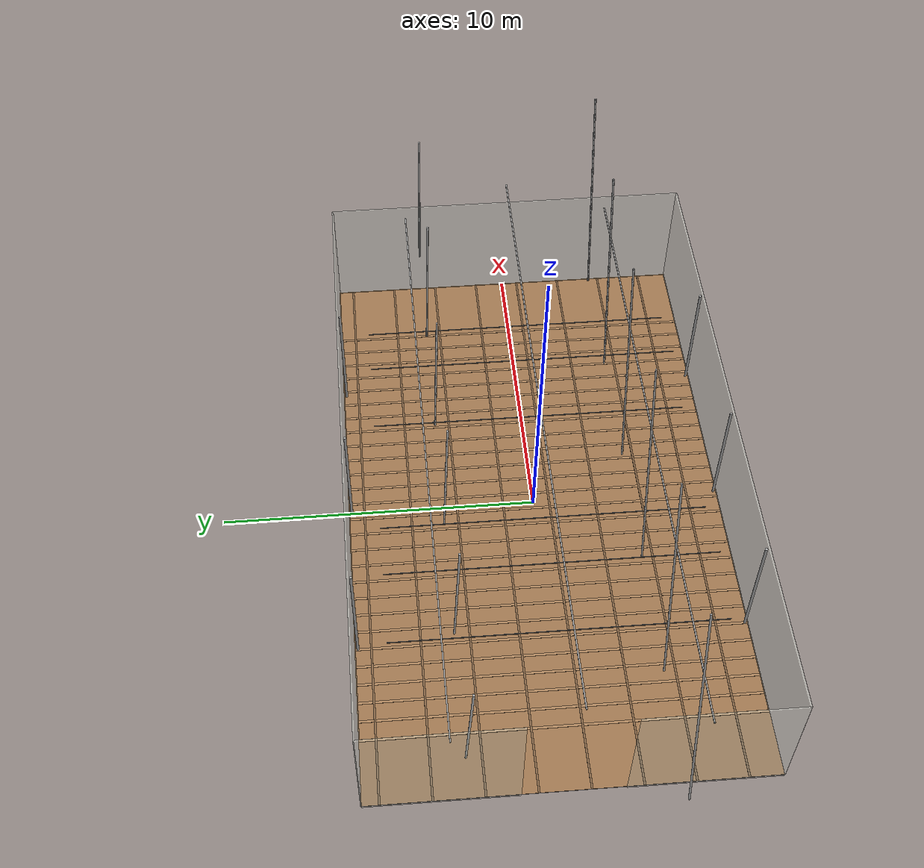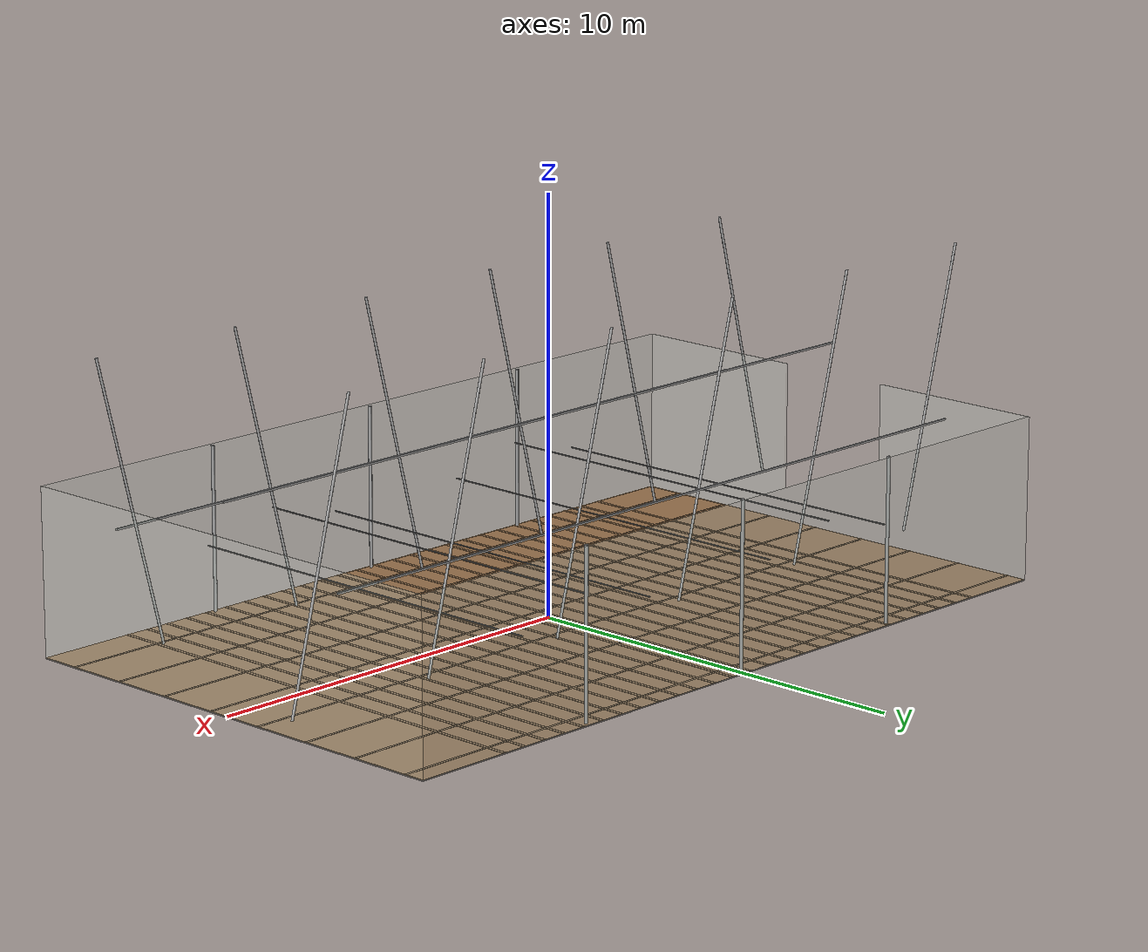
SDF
<?xml version="1.0" ?>
<!--
  黄瓜大棚模型 (Cucumber Greenhouse)
  尺寸: 长20m x 宽12m x 高5m (拱形顶)
  ★ 第十三次缩小: 40×16→20×12, 方便测试
  包含: 棚架结构、横梁、模拟藤蔓线
  所有部件都有碰撞体积用于避障测试
-->
<sdf version="1.6">
  <model name="greenhouse">
    <static>true</static>

    <!-- 地基/地面 (泥土色+纹理条纹, 增强光流效果) -->
    <link name="floor">
      <pose>0 0 0.01 0 0 0</pose>
      <collision name="floor_col"><geometry><box><size>20 12 0.02</size></box></geometry></collision>
      <visual name="floor_vis"><geometry><box><size>20 12 0.02</size></box></geometry>
        <material>
          <ambient>0.5 0.4 0.3 1</ambient>
          <diffuse>0.6 0.45 0.3 1</diffuse>
        </material>
      </visual>
    </link>

    <!-- ★ 第十五次新增: 泥土地面纹路 (给光流传感器提供特征) -->
    <!-- 横向泥土垄 (宽8cm, 间隔0.6m, 模拟种植行泥土沟壑) -->
    <link name="ds1"><pose>-8.0 0 0.022 0 0 0</pose><visual name="v"><geometry><box><size>0.08 12 0.006</size></box></geometry><material><ambient>0.55 0.42 0.28 1</ambient><diffuse>0.65 0.5 0.35 1</diffuse></material></visual></link>
    <link name="ds2"><pose>-7.4 0 0.022 0 0 0</pose><visual name="v"><geometry><box><size>0.08 12 0.006</size></box></geometry><material><ambient>0.55 0.42 0.28 1</ambient><diffuse>0.65 0.5 0.35 1</diffuse></material></visual></link>
    <link name="ds3"><pose>-6.8 0 0.022 0 0 0</pose><visual name="v"><geometry><box><size>0.08 12 0.006</size></box></geometry><material><ambient>0.55 0.42 0.28 1</ambient><diffuse>0.65 0.5 0.35 1</diffuse></material></visual></link>
    <link name="ds4"><pose>-6.2 0 0.022 0 0 0</pose><visual name="v"><geometry><box><size>0.08 12 0.006</size></box></geometry><material><ambient>0.55 0.42 0.28 1</ambient><diffuse>0.65 0.5 0.35 1</diffuse></material></visual></link>
    <link name="ds5"><pose>-5.6 0 0.022 0 0 0</pose><visual name="v"><geometry><box><size>0.08 12 0.006</size></box></geometry><material><ambient>0.55 0.42 0.28 1</ambient><diffuse>0.65 0.5 0.35 1</diffuse></material></visual></link>
    <link name="ds6"><pose>-5.0 0 0.022 0 0 0</pose><visual name="v"><geometry><box><size>0.08 12 0.006</size></box></geometry><material><ambient>0.55 0.42 0.28 1</ambient><diffuse>0.65 0.5 0.35 1</diffuse></material></visual></link>
    <link name="ds7"><pose>-4.4 0 0.022 0 0 0</pose><visual name="v"><geometry><box><size>0.08 12 0.006</size></box></geometry><material><ambient>0.55 0.42 0.28 1</ambient><diffuse>0.65 0.5 0.35 1</diffuse></material></visual></link>
    <link name="ds8"><pose>-3.8 0 0.022 0 0 0</pose><visual name="v"><geometry><box><size>0.08 12 0.006</size></box></geometry><material><ambient>0.55 0.42 0.28 1</ambient><diffuse>0.65 0.5 0.35 1</diffuse></material></visual></link>
    <link name="ds9"><pose>-3.2 0 0.022 0 0 0</pose><visual name="v"><geometry><box><size>0.08 12 0.006</size></box></geometry><material><ambient>0.55 0.42 0.28 1</ambient><diffuse>0.65 0.5 0.35 1</diffuse></material></visual></link>
    <link name="ds10"><pose>-2.6 0 0.022 0 0 0</pose><visual name="v"><geometry><box><size>0.08 12 0.006</size></box></geometry><material><ambient>0.55 0.42 0.28 1</ambient><diffuse>0.65 0.5 0.35 1</diffuse></material></visual></link>
    <link name="ds11"><pose>-2.0 0 0.022 0 0 0</pose><visual name="v"><geometry><box><size>0.08 12 0.006</size></box></geometry><material><ambient>0.55 0.42 0.28 1</ambient><diffuse>0.65 0.5 0.35 1</diffuse></material></visual></link>
    <link name="ds12"><pose>-1.4 0 0.022 0 0 0</pose><visual name="v"><geometry><box><size>0.08 12 0.006</size></box></geometry><material><ambient>0.55 0.42 0.28 1</ambient><diffuse>0.65 0.5 0.35 1</diffuse></material></visual></link>
    <link name="ds13"><pose>-0.8 0 0.022 0 0 0</pose><visual name="v"><geometry><box><size>0.08 12 0.006</size></box></geometry><material><ambient>0.55 0.42 0.28 1</ambient><diffuse>0.65 0.5 0.35 1</diffuse></material></visual></link>
    <link name="ds14"><pose>-0.2 0 0.022 0 0 0</pose><visual name="v"><geometry><box><size>0.08 12 0.006</size></box></geometry><material><ambient>0.55 0.42 0.28 1</ambient><diffuse>0.65 0.5 0.35 1</diffuse></material></visual></link>
    <link name="ds15"><pose>0.4 0 0.022 0 0 0</pose><visual name="v"><geometry><box><size>0.08 12 0.006</size></box></geometry><material><ambient>0.55 0.42 0.28 1</ambient><diffuse>0.65 0.5 0.35 1</diffuse></material></visual></link>
    <link name="ds16"><pose>1.0 0 0.022 0 0 0</pose><visual name="v"><geometry><box><size>0.08 12 0.006</size></box></geometry><material><ambient>0.55 0.42 0.28 1</ambient><diffuse>0.65 0.5 0.35 1</diffuse></material></visual></link>
    <link name="ds17"><pose>1.6 0 0.022 0 0 0</pose><visual name="v"><geometry><box><size>0.08 12 0.006</size></box></geometry><material><ambient>0.55 0.42 0.28 1</ambient><diffuse>0.65 0.5 0.35 1</diffuse></material></visual></link>
    <link name="ds18"><pose>2.2 0 0.022 0 0 0</pose><visual name="v"><geometry><box><size>0.08 12 0.006</size></box></geometry><material><ambient>0.55 0.42 0.28 1</ambient><diffuse>0.65 0.5 0.35 1</diffuse></material></visual></link>
    <link name="ds19"><pose>2.8 0 0.022 0 0 0</pose><visual name="v"><geometry><box><size>0.08 12 0.006</size></box></geometry><material><ambient>0.55 0.42 0.28 1</ambient><diffuse>0.65 0.5 0.35 1</diffuse></material></visual></link>
    <link name="ds20"><pose>3.4 0 0.022 0 0 0</pose><visual name="v"><geometry><box><size>0.08 12 0.006</size></box></geometry><material><ambient>0.55 0.42 0.28 1</ambient><diffuse>0.65 0.5 0.35 1</diffuse></material></visual></link>
    <link name="ds21"><pose>4.0 0 0.022 0 0 0</pose><visual name="v"><geometry><box><size>0.08 12 0.006</size></box></geometry><material><ambient>0.55 0.42 0.28 1</ambient><diffuse>0.65 0.5 0.35 1</diffuse></material></visual></link>
    <link name="ds22"><pose>4.6 0 0.022 0 0 0</pose><visual name="v"><geometry><box><size>0.08 12 0.006</size></box></geometry><material><ambient>0.55 0.42 0.28 1</ambient><diffuse>0.65 0.5 0.35 1</diffuse></material></visual></link>
    <link name="ds23"><pose>5.2 0 0.022 0 0 0</pose><visual name="v"><geometry><box><size>0.08 12 0.006</size></box></geometry><material><ambient>0.55 0.42 0.28 1</ambient><diffuse>0.65 0.5 0.35 1</diffuse></material></visual></link>
    <link name="ds24"><pose>5.8 0 0.022 0 0 0</pose><visual name="v"><geometry><box><size>0.08 12 0.006</size></box></geometry><material><ambient>0.55 0.42 0.28 1</ambient><diffuse>0.65 0.5 0.35 1</diffuse></material></visual></link>
    <link name="ds25"><pose>6.4 0 0.022 0 0 0</pose><visual name="v"><geometry><box><size>0.08 12 0.006</size></box></geometry><material><ambient>0.55 0.42 0.28 1</ambient><diffuse>0.65 0.5 0.35 1</diffuse></material></visual></link>
    <link name="ds26"><pose>7.0 0 0.022 0 0 0</pose><visual name="v"><geometry><box><size>0.08 12 0.006</size></box></geometry><material><ambient>0.55 0.42 0.28 1</ambient><diffuse>0.65 0.5 0.35 1</diffuse></material></visual></link>
    <link name="ds27"><pose>7.6 0 0.022 0 0 0</pose><visual name="v"><geometry><box><size>0.08 12 0.006</size></box></geometry><material><ambient>0.55 0.42 0.28 1</ambient><diffuse>0.65 0.5 0.35 1</diffuse></material></visual></link>
    <!-- 纵向深色沟 (与横向交叉, 形成泥土网格纹理) -->
    <link name="dc1"><pose>0 -5.0 0.024 0 0 0</pose><visual name="v"><geometry><box><size>20 0.06 0.005</size></box></geometry><material><ambient>0.42 0.32 0.22 1</ambient><diffuse>0.5 0.38 0.26 1</diffuse></material></visual></link>
    <link name="dc2"><pose>0 -3.5 0.024 0 0 0</pose><visual name="v"><geometry><box><size>20 0.06 0.005</size></box></geometry><material><ambient>0.42 0.32 0.22 1</ambient><diffuse>0.5 0.38 0.26 1</diffuse></material></visual></link>
    <link name="dc3"><pose>0 -2.0 0.024 0 0 0</pose><visual name="v"><geometry><box><size>20 0.06 0.005</size></box></geometry><material><ambient>0.42 0.32 0.22 1</ambient><diffuse>0.5 0.38 0.26 1</diffuse></material></visual></link>
    <link name="dc4"><pose>0 -0.5 0.024 0 0 0</pose><visual name="v"><geometry><box><size>20 0.06 0.005</size></box></geometry><material><ambient>0.42 0.32 0.22 1</ambient><diffuse>0.5 0.38 0.26 1</diffuse></material></visual></link>
    <link name="dc5"><pose>0 1.0 0.024 0 0 0</pose><visual name="v"><geometry><box><size>20 0.06 0.005</size></box></geometry><material><ambient>0.42 0.32 0.22 1</ambient><diffuse>0.5 0.38 0.26 1</diffuse></material></visual></link>
    <link name="dc6"><pose>0 2.5 0.024 0 0 0</pose><visual name="v"><geometry><box><size>20 0.06 0.005</size></box></geometry><material><ambient>0.42 0.32 0.22 1</ambient><diffuse>0.5 0.38 0.26 1</diffuse></material></visual></link>
    <link name="dc7"><pose>0 4.0 0.024 0 0 0</pose><visual name="v"><geometry><box><size>20 0.06 0.005</size></box></geometry><material><ambient>0.42 0.32 0.22 1</ambient><diffuse>0.5 0.38 0.26 1</diffuse></material></visual></link>
    <link name="dc8"><pose>0 5.5 0.024 0 0 0</pose><visual name="v"><geometry><box><size>20 0.06 0.005</size></box></geometry><material><ambient>0.42 0.32 0.22 1</ambient><diffuse>0.5 0.38 0.26 1</diffuse></material></visual></link>

    <!-- 左侧墙壁 (y=-6) -->
    <link name="wall_left">
      <pose>0 -6 2.0 0 0 0</pose>
      <collision name="col"><geometry><box><size>20 0.05 4.0</size></box></geometry></collision>
      <visual name="vis"><geometry><box><size>20 0.05 4.0</size></box></geometry>
        <material><ambient>0.8 0.85 0.8 0.3</ambient><diffuse>0.9 0.95 0.9 0.3</diffuse></material>
        <transparency>0.6</transparency>
      </visual>
    </link>

    <!-- 右侧墙壁 (y=6) -->
    <link name="wall_right">
      <pose>0 6 2.0 0 0 0</pose>
      <collision name="col"><geometry><box><size>20 0.05 4.0</size></box></geometry></collision>
      <visual name="vis"><geometry><box><size>20 0.05 4.0</size></box></geometry>
        <material><ambient>0.8 0.85 0.8 0.3</ambient><diffuse>0.9 0.95 0.9 0.3</diffuse></material>
        <transparency>0.6</transparency>
      </visual>
    </link>

    <!-- 前端墙壁 (x=-10, 留门洞 3m宽) -->
    <link name="wall_front_l">
      <pose>-10 -3.75 2.0 0 0 0</pose>
      <collision name="col"><geometry><box><size>0.05 4.5 4.0</size></box></geometry></collision>
      <visual name="vis"><geometry><box><size>0.05 4.5 4.0</size></box></geometry>
        <material><ambient>0.8 0.85 0.8 0.3</ambient><diffuse>0.9 0.95 0.9 0.3</diffuse></material>
        <transparency>0.6</transparency>
      </visual>
    </link>
    <link name="wall_front_r">
      <pose>-10 3.75 2.0 0 0 0</pose>
      <collision name="col"><geometry><box><size>0.05 4.5 4.0</size></box></geometry></collision>
      <visual name="vis"><geometry><box><size>0.05 4.5 4.0</size></box></geometry>
        <material><ambient>0.8 0.85 0.8 0.3</ambient><diffuse>0.9 0.95 0.9 0.3</diffuse></material>
        <transparency>0.6</transparency>
      </visual>
    </link>

    <!-- 后端墙壁 (x=10) -->
    <link name="wall_back">
      <pose>10 0 2.0 0 0 0</pose>
      <collision name="col"><geometry><box><size>0.05 12.0 4.0</size></box></geometry></collision>
      <visual name="vis"><geometry><box><size>0.05 12.0 4.0</size></box></geometry>
        <material><ambient>0.8 0.85 0.8 0.3</ambient><diffuse>0.9 0.95 0.9 0.3</diffuse></material>
        <transparency>0.6</transparency>
      </visual>
    </link>

    <!-- 拱形屋顶骨架 (每隔4m, 共6对) -->
    <link name="arch_m10_l"><pose>-10 -3 4.2 0 0.25 0</pose><collision name="c"><geometry><cylinder><radius>0.03</radius><length>7.0</length></cylinder></geometry></collision><visual name="v"><geometry><cylinder><radius>0.03</radius><length>7.0</length></cylinder></geometry><material><ambient>0.6 0.6 0.6 1</ambient><diffuse>0.7 0.7 0.7 1</diffuse></material></visual></link>
    <link name="arch_m10_r"><pose>-10 3 4.2 0 -0.25 0</pose><collision name="c"><geometry><cylinder><radius>0.03</radius><length>7.0</length></cylinder></geometry></collision><visual name="v"><geometry><cylinder><radius>0.03</radius><length>7.0</length></cylinder></geometry><material><ambient>0.6 0.6 0.6 1</ambient><diffuse>0.7 0.7 0.7 1</diffuse></material></visual></link>

    <link name="arch_m6_l"><pose>-6 -3 4.2 0 0.25 0</pose><collision name="c"><geometry><cylinder><radius>0.03</radius><length>7.0</length></cylinder></geometry></collision><visual name="v"><geometry><cylinder><radius>0.03</radius><length>7.0</length></cylinder></geometry><material><ambient>0.6 0.6 0.6 1</ambient><diffuse>0.7 0.7 0.7 1</diffuse></material></visual></link>
    <link name="arch_m6_r"><pose>-6 3 4.2 0 -0.25 0</pose><collision name="c"><geometry><cylinder><radius>0.03</radius><length>7.0</length></cylinder></geometry></collision><visual name="v"><geometry><cylinder><radius>0.03</radius><length>7.0</length></cylinder></geometry><material><ambient>0.6 0.6 0.6 1</ambient><diffuse>0.7 0.7 0.7 1</diffuse></material></visual></link>

    <link name="arch_m2_l"><pose>-2 -3 4.2 0 0.25 0</pose><collision name="c"><geometry><cylinder><radius>0.03</radius><length>7.0</length></cylinder></geometry></collision><visual name="v"><geometry><cylinder><radius>0.03</radius><length>7.0</length></cylinder></geometry><material><ambient>0.6 0.6 0.6 1</ambient><diffuse>0.7 0.7 0.7 1</diffuse></material></visual></link>
    <link name="arch_m2_r"><pose>-2 3 4.2 0 -0.25 0</pose><collision name="c"><geometry><cylinder><radius>0.03</radius><length>7.0</length></cylinder></geometry></collision><visual name="v"><geometry><cylinder><radius>0.03</radius><length>7.0</length></cylinder></geometry><material><ambient>0.6 0.6 0.6 1</ambient><diffuse>0.7 0.7 0.7 1</diffuse></material></visual></link>

    <link name="arch_2_l"><pose>2 -3 4.2 0 0.25 0</pose><collision name="c"><geometry><cylinder><radius>0.03</radius><length>7.0</length></cylinder></geometry></collision><visual name="v"><geometry><cylinder><radius>0.03</radius><length>7.0</length></cylinder></geometry><material><ambient>0.6 0.6 0.6 1</ambient><diffuse>0.7 0.7 0.7 1</diffuse></material></visual></link>
    <link name="arch_2_r"><pose>2 3 4.2 0 -0.25 0</pose><collision name="c"><geometry><cylinder><radius>0.03</radius><length>7.0</length></cylinder></geometry></collision><visual name="v"><geometry><cylinder><radius>0.03</radius><length>7.0</length></cylinder></geometry><material><ambient>0.6 0.6 0.6 1</ambient><diffuse>0.7 0.7 0.7 1</diffuse></material></visual></link>

    <link name="arch_6_l"><pose>6 -3 4.2 0 0.25 0</pose><collision name="c"><geometry><cylinder><radius>0.03</radius><length>7.0</length></cylinder></geometry></collision><visual name="v"><geometry><cylinder><radius>0.03</radius><length>7.0</length></cylinder></geometry><material><ambient>0.6 0.6 0.6 1</ambient><diffuse>0.7 0.7 0.7 1</diffuse></material></visual></link>
    <link name="arch_6_r"><pose>6 3 4.2 0 -0.25 0</pose><collision name="c"><geometry><cylinder><radius>0.03</radius><length>7.0</length></cylinder></geometry></collision><visual name="v"><geometry><cylinder><radius>0.03</radius><length>7.0</length></cylinder></geometry><material><ambient>0.6 0.6 0.6 1</ambient><diffuse>0.7 0.7 0.7 1</diffuse></material></visual></link>

    <link name="arch_10_l"><pose>10 -3 4.2 0 0.25 0</pose><collision name="c"><geometry><cylinder><radius>0.03</radius><length>7.0</length></cylinder></geometry></collision><visual name="v"><geometry><cylinder><radius>0.03</radius><length>7.0</length></cylinder></geometry><material><ambient>0.6 0.6 0.6 1</ambient><diffuse>0.7 0.7 0.7 1</diffuse></material></visual></link>
    <link name="arch_10_r"><pose>10 3 4.2 0 -0.25 0</pose><collision name="c"><geometry><cylinder><radius>0.03</radius><length>7.0</length></cylinder></geometry></collision><visual name="v"><geometry><cylinder><radius>0.03</radius><length>7.0</length></cylinder></geometry><material><ambient>0.6 0.6 0.6 1</ambient><diffuse>0.7 0.7 0.7 1</diffuse></material></visual></link>

    <!-- 纵向横梁 -->
    <link name="ridge_beam"><pose>0 0 4.8 0 0 0</pose><collision name="c"><geometry><box><size>20 0.04 0.04</size></box></geometry></collision><visual name="v"><geometry><box><size>20 0.04 0.04</size></box></geometry><material><ambient>0.5 0.5 0.5 1</ambient><diffuse>0.65 0.65 0.65 1</diffuse></material></visual></link>
    <link name="purlin_l"><pose>0 -3.5 3.5 0 0 0</pose><collision name="c"><geometry><box><size>20 0.04 0.04</size></box></geometry></collision><visual name="v"><geometry><box><size>20 0.04 0.04</size></box></geometry><material><ambient>0.5 0.5 0.5 1</ambient><diffuse>0.65 0.65 0.65 1</diffuse></material></visual></link>
    <link name="purlin_r"><pose>0 3.5 3.5 0 0 0</pose><collision name="c"><geometry><box><size>20 0.04 0.04</size></box></geometry></collision><visual name="v"><geometry><box><size>20 0.04 0.04</size></box></geometry><material><ambient>0.5 0.5 0.5 1</ambient><diffuse>0.65 0.65 0.65 1</diffuse></material></visual></link>

    <!-- 竖直支撑柱 (每隔5m, 左右各一) -->
    <link name="pillar_m5_l"><pose>-5 -5.9 2.0 0 0 0</pose><collision name="c"><geometry><cylinder><radius>0.04</radius><length>4.0</length></cylinder></geometry></collision><visual name="v"><geometry><cylinder><radius>0.04</radius><length>4.0</length></cylinder></geometry><material><ambient>0.5 0.5 0.5 1</ambient><diffuse>0.65 0.65 0.65 1</diffuse></material></visual></link>
    <link name="pillar_m5_r"><pose>-5 5.9 2.0 0 0 0</pose><collision name="c"><geometry><cylinder><radius>0.04</radius><length>4.0</length></cylinder></geometry></collision><visual name="v"><geometry><cylinder><radius>0.04</radius><length>4.0</length></cylinder></geometry><material><ambient>0.5 0.5 0.5 1</ambient><diffuse>0.65 0.65 0.65 1</diffuse></material></visual></link>
    <link name="pillar_0_l"><pose>0 -5.9 2.0 0 0 0</pose><collision name="c"><geometry><cylinder><radius>0.04</radius><length>4.0</length></cylinder></geometry></collision><visual name="v"><geometry><cylinder><radius>0.04</radius><length>4.0</length></cylinder></geometry><material><ambient>0.5 0.5 0.5 1</ambient><diffuse>0.65 0.65 0.65 1</diffuse></material></visual></link>
    <link name="pillar_0_r"><pose>0 5.9 2.0 0 0 0</pose><collision name="c"><geometry><cylinder><radius>0.04</radius><length>4.0</length></cylinder></geometry></collision><visual name="v"><geometry><cylinder><radius>0.04</radius><length>4.0</length></cylinder></geometry><material><ambient>0.5 0.5 0.5 1</ambient><diffuse>0.65 0.65 0.65 1</diffuse></material></visual></link>
    <link name="pillar_5_l"><pose>5 -5.9 2.0 0 0 0</pose><collision name="c"><geometry><cylinder><radius>0.04</radius><length>4.0</length></cylinder></geometry></collision><visual name="v"><geometry><cylinder><radius>0.04</radius><length>4.0</length></cylinder></geometry><material><ambient>0.5 0.5 0.5 1</ambient><diffuse>0.65 0.65 0.65 1</diffuse></material></visual></link>
    <link name="pillar_5_r"><pose>5 5.9 2.0 0 0 0</pose><collision name="c"><geometry><cylinder><radius>0.04</radius><length>4.0</length></cylinder></geometry></collision><visual name="v"><geometry><cylinder><radius>0.04</radius><length>4.0</length></cylinder></geometry><material><ambient>0.5 0.5 0.5 1</ambient><diffuse>0.65 0.65 0.65 1</diffuse></material></visual></link>

    <!-- 藤蔓牵引线 (横向遮挡障碍物) -->
    <link name="wire_1"><pose>-6 0 2.0 0 0 0</pose><collision name="c"><geometry><box><size>0.02 10.0 0.02</size></box></geometry></collision><visual name="v"><geometry><box><size>0.02 10.0 0.02</size></box></geometry><material><ambient>0.3 0.3 0.3 1</ambient><diffuse>0.4 0.4 0.4 1</diffuse></material></visual></link>
    <link name="wire_2"><pose>-2 0 2.0 0 0 0</pose><collision name="c"><geometry><box><size>0.02 10.0 0.02</size></box></geometry></collision><visual name="v"><geometry><box><size>0.02 10.0 0.02</size></box></geometry><material><ambient>0.3 0.3 0.3 1</ambient><diffuse>0.4 0.4 0.4 1</diffuse></material></visual></link>
    <link name="wire_3"><pose>2 0 2.0 0 0 0</pose><collision name="c"><geometry><box><size>0.02 10.0 0.02</size></box></geometry></collision><visual name="v"><geometry><box><size>0.02 10.0 0.02</size></box></geometry><material><ambient>0.3 0.3 0.3 1</ambient><diffuse>0.4 0.4 0.4 1</diffuse></material></visual></link>
    <link name="wire_4"><pose>6 0 2.0 0 0 0</pose><collision name="c"><geometry><box><size>0.02 10.0 0.02</size></box></geometry></collision><visual name="v"><geometry><box><size>0.02 10.0 0.02</size></box></geometry><material><ambient>0.3 0.3 0.3 1</ambient><diffuse>0.4 0.4 0.4 1</diffuse></material></visual></link>
    <link name="wire_h1"><pose>-4 0 2.5 0 0 0</pose><collision name="c"><geometry><box><size>0.02 10.0 0.02</size></box></geometry></collision><visual name="v"><geometry><box><size>0.02 10.0 0.02</size></box></geometry><material><ambient>0.3 0.3 0.3 1</ambient><diffuse>0.4 0.4 0.4 1</diffuse></material></visual></link>
    <link name="wire_h2"><pose>4 0 2.5 0 0 0</pose><collision name="c"><geometry><box><size>0.02 10.0 0.02</size></box></geometry></collision><visual name="v"><geometry><box><size>0.02 10.0 0.02</size></box></geometry><material><ambient>0.3 0.3 0.3 1</ambient><diffuse>0.4 0.4 0.4 1</diffuse></material></visual></link>

  </model>
</sdf>
